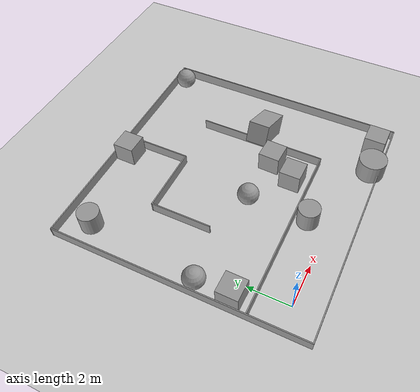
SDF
<sdf version="1.7">
 <world name="default">
  <light name="sun" type="directional">
   <pose>0 0 10 0 -0 0</pose>
   <diffuse>0.8 0.8 0.8 1</diffuse>
   <specular>0.2 0.2 0.2 1</specular>
   <attenuation>
    <range>1000</range>
    <constant>0.9</constant>
    <linear>0.01</linear>
    <quadratic>0.001</quadratic>
   </attenuation>
   <direction>-0.5 0.1 -0.9</direction>
   <spot><inner_angle>0</inner_angle><outer_angle>0</outer_angle><falloff>0</falloff></spot>
  </light>
  <model name="ground_plane">
   <static>1</static>
   <link name="link">
    <collision name="collision">
     <geometry><plane><normal>0 0 1</normal><size>100 100</size></plane></geometry>
     <surface><friction><ode><mu>100</mu><mu2>50</mu2></ode></friction></surface>
    </collision>
    <visual name="visual">
     <cast_shadows>0</cast_shadows>
     <geometry><plane><normal>0 0 1</normal><size>100 100</size></plane></geometry>
     <material>
      <script><uri>file://media/materials/scripts/gazebo.material</uri><name>Gazebo/Grey</name></script>
     </material>
    </visual>
   </link>
  </model>
  <gravity>0 0 -9.8</gravity>
  <magnetic_field>6e-06 2.3e-05 -4.2e-05</magnetic_field>
  <atmosphere type="adiabatic"/>
  <physics type="ode">
   <max_step_size>0.001</max_step_size>
   <real_time_factor>1</real_time_factor>
   <real_time_update_rate>1000</real_time_update_rate>
  </physics>
  <scene><ambient>0.4 0.4 0.4 1</ambient><background>0.7 0.7 0.7 1</background><shadows>1</shadows></scene>
  <spherical_coordinates>
   <surface_model>EARTH_WGS84</surface_model>
   <latitude_deg>0</latitude_deg>
   <longitude_deg>0</longitude_deg>
   <elevation>0</elevation>
   <heading_deg>0</heading_deg>
  </spherical_coordinates>
  <model name="world1">
   <pose>5.84556 4.72065 0 0 0 -3.13281</pose>
   <link name="Wall_1">
    <collision name="Wall_1_Collision">
     <geometry><box><size>11.8998 0.05 0.5</size></box></geometry>
     <pose>0 0 0.25 0 -0 0</pose>
    </collision>
    <visual name="Wall_1_Visual">
     <pose>0 0 0.25 0 -0 0</pose>
     <geometry><box><size>11.8998 0.05 0.5</size></box></geometry>
     <material>
      <script><uri>file://media/materials/scripts/gazebo.material</uri><name>Gazebo/Grey</name></script>
      <ambient>1 1 1 1</ambient>
     </material>
     <meta><layer>0</layer></meta>
    </visual>
    <pose>1.20645 5.925 0 0 -0 0</pose>
   </link>
   <link name="Wall_10">
    <collision name="Wall_10_Collision">
     <geometry><box><size>2.89963 0.05 0.5</size></box></geometry>
     <pose>0 0 0.25 0 -0 0</pose>
    </collision>
    <visual name="Wall_10_Visual">
     <pose>0 0 0.25 0 -0 0</pose>
     <geometry><box><size>2.89963 0.05 0.5</size></box></geometry>
     <material>
      <script><uri>file://media/materials/scripts/gazebo.material</uri><name>Gazebo/Grey</name></script>
      <ambient>1 1 1 1</ambient>
     </material>
     <meta><layer>0</layer></meta>
    </visual>
    <pose>1.06245 -4.121 0 0 -0 1.5708</pose>
   </link>
   <link name="Wall_11">
    <collision name="Wall_11_Collision">
     <geometry><box><size>3.15036 0.05 0.5</size></box></geometry>
     <pose>0 0 0.25 0 -0 0</pose>
    </collision>
    <visual name="Wall_11_Visual">
     <pose>0 0 0.25 0 -0 0</pose>
     <geometry><box><size>3.15036 0.05 0.5</size></box></geometry>
     <material>
      <script><uri>file://media/materials/scripts/gazebo.material</uri><name>Gazebo/Grey</name></script>
      <ambient>1 1 1 1</ambient>
     </material>
     <meta><layer>0</layer></meta>
    </visual>
    <pose>2.61245 -2.696 0 0 -0 0</pose>
   </link>
   <link name="Wall_12">
    <collision name="Wall_12_Collision">
     <geometry><box><size>2.89963 0.05 0.5</size></box></geometry>
     <pose>0 0 0.25 0 -0 0</pose>
    </collision>
    <visual name="Wall_12_Visual">
     <pose>0 0 0.25 0 -0 0</pose>
     <geometry><box><size>2.89963 0.05 0.5</size></box></geometry>
     <material>
      <script><uri>file://media/materials/scripts/gazebo.material</uri><name>Gazebo/Grey</name></script>
      <ambient>1 1 1 1</ambient>
     </material>
     <meta><layer>0</layer></meta>
    </visual>
    <pose>4.16245 -1.271 0 0 -0 1.5708</pose>
   </link>
   <link name="Wall_2">
    <collision name="Wall_2_Collision">
     <geometry><box><size>11.9 0.05 0.5</size></box></geometry>
     <pose>0 0 0.25 0 -0 0</pose>
    </collision>
    <visual name="Wall_2_Visual">
     <pose>0 0 0.25 0 -0 0</pose>
     <geometry><box><size>11.9 0.05 0.5</size></box></geometry>
     <material>
      <script><uri>file://media/materials/scripts/gazebo.material</uri><name>Gazebo/Grey</name></script>
      <ambient>1 1 1 1</ambient>
     </material>
     <meta><layer>0</layer></meta>
    </visual>
    <pose>7.13145 0 0 0 -0 -1.5708</pose>
   </link>
   <link name="Wall_3">
    <collision name="Wall_3_Collision">
     <geometry><box><size>11.9002 0.05 0.5</size></box></geometry>
     <pose>0 0 0.25 0 -0 0</pose>
    </collision>
    <visual name="Wall_3_Visual">
     <pose>0 0 0.25 0 -0 0</pose>
     <geometry><box><size>11.9002 0.05 0.5</size></box></geometry>
     <material>
      <script><uri>file://media/materials/scripts/gazebo.material</uri><name>Gazebo/Grey</name></script>
      <ambient>1 1 1 1</ambient>
     </material>
     <meta><layer>0</layer></meta>
    </visual>
    <pose>1.20645 -5.925 0 0 -0 3.14159</pose>
   </link>
   <link name="Wall_4">
    <collision name="Wall_4_Collision">
     <geometry><box><size>11.9 0.05 0.5</size></box></geometry>
     <pose>0 0 0.25 0 -0 0</pose>
    </collision>
    <visual name="Wall_4_Visual">
     <pose>0 0 0.25 0 -0 0</pose>
     <geometry><box><size>11.9 0.05 0.5</size></box></geometry>
     <material>
      <script><uri>file://media/materials/scripts/gazebo.material</uri><name>Gazebo/Grey</name></script>
      <ambient>1 1 1 1</ambient>
     </material>
     <meta><layer>0</layer></meta>
    </visual>
    <pose>-4.71855 0 0 0 -0 1.5708</pose>
   </link>
   <link name="Wall_6">
    <collision name="Wall_6_Collision">
     <geometry><box><size>8.65037 0.05 0.5</size></box></geometry>
     <pose>0 0 0.25 0 -0 0</pose>
    </collision>
    <visual name="Wall_6_Visual">
     <pose>0 0 0.25 0 -0 0</pose>
     <geometry><box><size>8.65037 0.05 0.5</size></box></geometry>
     <material>
      <script><uri>file://media/materials/scripts/gazebo.material</uri><name>Gazebo/Grey</name></script>
      <ambient>1 1 1 1</ambient>
     </material>
     <meta><layer>0</layer></meta>
    </visual>
    <pose>2.78945 3.202 0 0 -0 3.14159</pose>
   </link>
   <link name="Wall_7">
    <collision name="Wall_7_Collision">
     <geometry><box><size>6.14957 0.05 0.5</size></box></geometry>
     <pose>0 0 0.25 0 -0 0</pose>
    </collision>
    <visual name="Wall_7_Visual">
     <pose>0 0 0.25 0 -0 0</pose>
     <geometry><box><size>6.14957 0.05 0.5</size></box></geometry>
     <material>
      <script><uri>file://media/materials/scripts/gazebo.material</uri><name>Gazebo/Grey</name></script>
      <ambient>1 1 1 1</ambient>
     </material>
     <meta><layer>0</layer></meta>
    </visual>
    <pose>-1.51055 0.152 0 0 -0 -1.5708</pose>
   </link>
   <static>1</static>
  </model>
  <model name="unit_box">
   <pose>9.6029 -0.523146 0.499995 1e-05 -0 0</pose>
   <link name="link">
    <inertial>
     <mass>1</mass>
     <inertia>
      <ixx>0.166667</ixx>
      <ixy>0</ixy>
      <ixz>0</ixz>
      <iyy>0.166667</iyy>
      <iyz>0</iyz>
      <izz>0.166667</izz>
     </inertia>
    </inertial>
    <collision name="collision"><geometry><box><size>1 1 1</size></box></geometry></collision>
    <visual name="visual">
     <geometry><box><size>1 1 1</size></box></geometry>
     <material>
      <script><name>Gazebo/Grey</name><uri>file://media/materials/scripts/gazebo.material</uri></script>
     </material>
    </visual>
   </link>
  </model>
  <model name="unit_sphere">
   <pose>9.76987 10.1493 0.5 0.011923 0.0002 -2.5e-05</pose>
   <link name="link">
    <inertial>
     <mass>1</mass>
     <inertia><ixx>0.1</ixx><ixy>0</ixy><ixz>0</ixz><iyy>0.1</iyy><iyz>0</iyz><izz>0.1</izz></inertia>
    </inertial>
    <collision name="collision"><geometry><sphere><radius>0.5</radius></sphere></geometry></collision>
    <visual name="visual">
     <geometry><sphere><radius>0.5</radius></sphere></geometry>
     <material>
      <script><name>Gazebo/Grey</name><uri>file://media/materials/scripts/gazebo.material</uri></script>
     </material>
    </visual>
   </link>
  </model>
  <model name="unit_box_0">
   <pose>7.80581 4.62268 0.861129 -0.005481 0.409523 -0.004995</pose>
   <link name="link">
    <inertial>
     <mass>1</mass>
     <inertia>
      <ixx>0.166667</ixx>
      <ixy>0</ixy>
      <ixz>0</ixz>
      <iyy>0.166667</iyy>
      <iyz>0</iyz>
      <izz>0.166667</izz>
     </inertia>
    </inertial>
    <collision name="collision"><geometry><box><size>2.00901 1 1</size></box></geometry></collision>
    <visual name="visual">
     <geometry><box><size>2.00901 1 1</size></box></geometry>
     <material>
      <script><name>Gazebo/Grey</name><uri>file://media/materials/scripts/gazebo.material</uri></script>
     </material>
    </visual>
   </link>
  </model>
  <model name="unit_box_1">
   <pose>6.47278 3.6271 0.499995 -1e-05 -0 -0.026541</pose>
   <link name="link">
    <inertial>
     <mass>1</mass>
     <inertia>
      <ixx>0.166667</ixx>
      <ixy>0</ixy>
      <ixz>0</ixz>
      <iyy>0.166667</iyy>
      <iyz>0</iyz>
      <izz>0.166667</izz>
     </inertia>
    </inertial>
    <collision name="collision"><geometry><box><size>1 1 1</size></box></geometry></collision>
    <visual name="visual">
     <geometry><box><size>1 1 1</size></box></geometry>
     <material>
      <script><name>Gazebo/Grey</name><uri>file://media/materials/scripts/gazebo.material</uri></script>
     </material>
    </visual>
   </link>
  </model>
  <model name="unit_sphere_0">
   <pose>3.98709 3.75386 0.5 0 -0 0</pose>
   <link name="link">
    <inertial>
     <mass>1</mass>
     <inertia><ixx>0.1</ixx><ixy>0</ixy><ixz>0</ixz><iyy>0.1</iyy><iyz>0</iyz><izz>0.1</izz></inertia>
    </inertial>
    <collision name="collision"><geometry><sphere><radius>0.5</radius></sphere></geometry></collision>
    <visual name="visual">
     <geometry><sphere><radius>0.5</radius></sphere></geometry>
     <material>
      <script><name>Gazebo/Grey</name><uri>file://media/materials/scripts/gazebo.material</uri></script>
     </material>
    </visual>
   </link>
  </model>
  <model name="unit_box_2">
   <pose>4.06039 10.0954 0.499995 0 1e-05 0</pose>
   <link name="link">
    <inertial>
     <mass>1</mass>
     <inertia>
      <ixx>0.166667</ixx>
      <ixy>0</ixy>
      <ixz>0</ixz>
      <iyy>0.166667</iyy>
      <iyz>0</iyz>
      <izz>0.166667</izz>
     </inertia>
    </inertial>
    <collision name="collision"><geometry><box><size>1 1 1</size></box></geometry></collision>
    <visual name="visual">
     <geometry><box><size>1 1 1</size></box></geometry>
     <material>
      <script><name>Gazebo/Grey</name><uri>file://media/materials/scripts/gazebo.material</uri></script>
     </material>
    </visual>
   </link>
  </model>
  <model name="unit_cylinder">
   <pose>-0.193219 9.3748 0.499998 3e-06 -3e-06 0</pose>
   <link name="link">
    <inertial>
     <mass>1</mass>
     <inertia><ixx>0.145833</ixx><ixy>0</ixy><ixz>0</ixz><iyy>0.145833</iyy><iyz>0</iyz><izz>0.125</izz></inertia>
    </inertial>
    <collision name="collision">
     <geometry><cylinder><radius>0.5</radius><length>1</length></cylinder></geometry>
    </collision>
    <visual name="visual">
     <geometry><cylinder><radius>0.5</radius><length>1</length></cylinder></geometry>
     <material>
      <script><name>Gazebo/Grey</name><uri>file://media/materials/scripts/gazebo.material</uri></script>
     </material>
    </visual>
   </link>
  </model>
  <model name="unit_sphere_1">
   <pose>-0.754345 3.96798 0.5 0 -0 0</pose>
   <link name="link">
    <inertial>
     <mass>1</mass>
     <inertia><ixx>0.1</ixx><ixy>0</ixy><ixz>0</ixz><iyy>0.1</iyy><iyz>0</iyz><izz>0.1</izz></inertia>
    </inertial>
    <collision name="collision"><geometry><sphere><radius>0.5</radius></sphere></geometry></collision>
    <visual name="visual">
     <geometry><sphere><radius>0.5</radius></sphere></geometry>
     <material>
      <script><name>Gazebo/Grey</name><uri>file://media/materials/scripts/gazebo.material</uri></script>
     </material>
    </visual>
   </link>
  </model>
  <model name="unit_box_3">
   <pose>-0.657935 2.32382 0.499995 1e-05 -0 0</pose>
   <link name="link">
    <inertial>
     <mass>1</mass>
     <inertia>
      <ixx>0.166667</ixx>
      <ixy>0</ixy>
      <ixz>0</ixz>
      <iyy>0.166667</iyy>
      <iyz>0</iyz>
      <izz>0.166667</izz>
     </inertia>
    </inertial>
    <collision name="collision"><geometry><box><size>1 1 1</size></box></geometry></collision>
    <visual name="visual">
     <geometry><box><size>1 1 1</size></box></geometry>
     <material>
      <script><name>Gazebo/Grey</name><uri>file://media/materials/scripts/gazebo.material</uri></script>
     </material>
    </visual>
   </link>
  </model>
  <model name="unit_cylinder_0">
   <pose>7.9843 -0.77615 0.499994 5e-06 4e-06 -5e-06</pose>
   <link name="link">
    <inertial>
     <mass>1</mass>
     <inertia><ixx>0.145833</ixx><ixy>0</ixy><ixz>0</ixz><iyy>0.145833</iyy><iyz>0</iyz><izz>0.125</izz></inertia>
    </inertial>
    <collision name="collision">
     <geometry><cylinder><radius>0.649971</radius><length>1</length></cylinder></geometry>
    </collision>
    <visual name="visual">
     <geometry><cylinder><radius>0.649971</radius><length>1</length></cylinder></geometry>
     <material>
      <script><name>Gazebo/Grey</name><uri>file://media/materials/scripts/gazebo.material</uri></script>
     </material>
    </visual>
   </link>
  </model>
  <model name="unit_cylinder_1">
   <pose>4.06798 0.906419 0.499993 -3e-06 -4e-06 -0</pose>
   <link name="link">
    <inertial>
     <mass>1</mass>
     <inertia><ixx>0.145833</ixx><ixy>0</ixy><ixz>0</ixz><iyy>0.145833</iyy><iyz>0</iyz><izz>0.125</izz></inertia>
    </inertial>
    <collision name="collision">
     <geometry><cylinder><radius>0.5</radius><length>1</length></cylinder></geometry>
    </collision>
    <visual name="visual">
     <geometry><cylinder><radius>0.5</radius><length>1</length></cylinder></geometry>
     <material>
      <script><name>Gazebo/Grey</name><uri>file://media/materials/scripts/gazebo.material</uri></script>
     </material>
    </visual>
   </link>
  </model>
  <model name="unit_box_4">
   <pose>5.8626 2.36079 0.5 0 -0 0</pose>
   <link name="link">
    <inertial>
     <mass>1</mass>
     <inertia>
      <ixx>0.166667</ixx>
      <ixy>0</ixy>
      <ixz>0</ixz>
      <iyy>0.166667</iyy>
      <iyz>0</iyz>
      <izz>0.166667</izz>
     </inertia>
    </inertial>
    <collision name="collision"><geometry><box><size>1 1 1</size></box></geometry></collision>
    <visual name="visual">
     <geometry><box><size>1 1 1</size></box></geometry>
     <material>
      <script><name>Gazebo/Grey</name><uri>file://media/materials/scripts/gazebo.material</uri></script>
     </material>
    </visual>
   </link>
  </model>
 </world>
</sdf>
